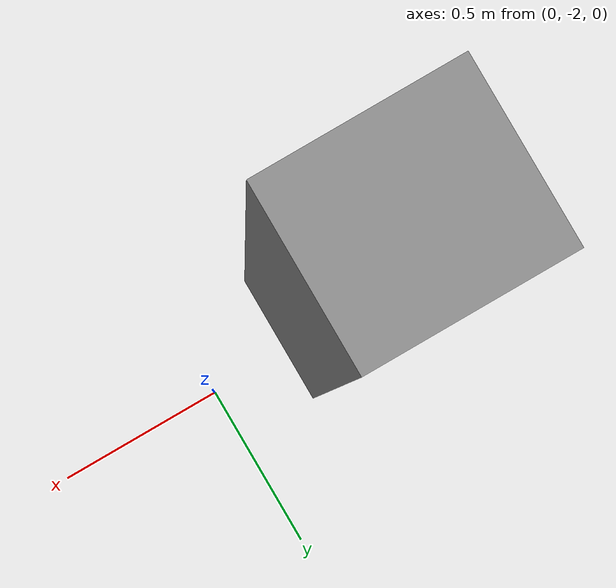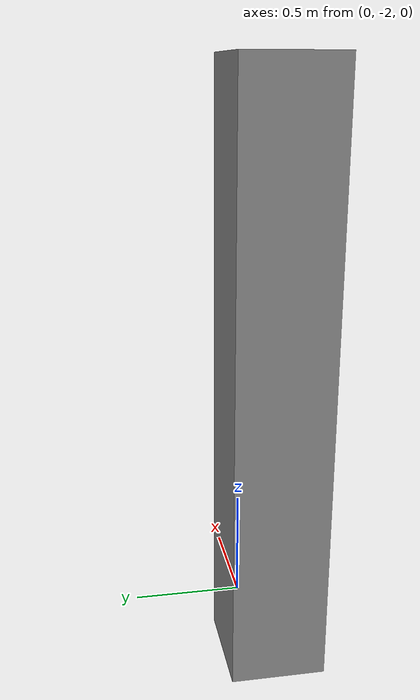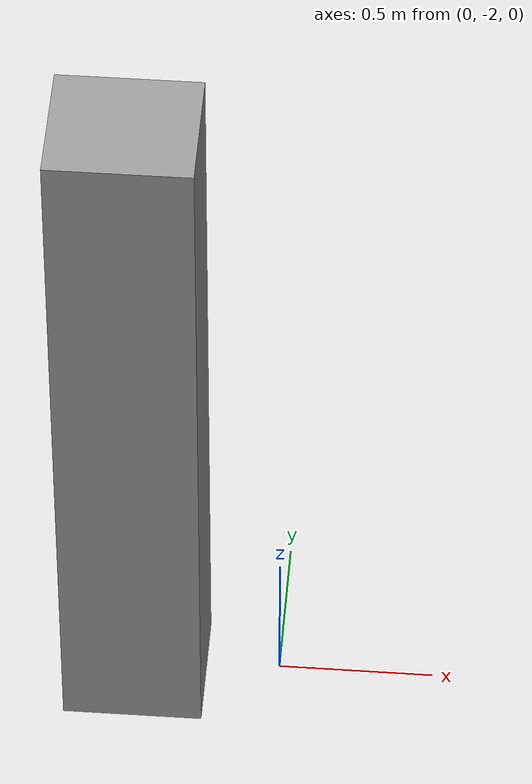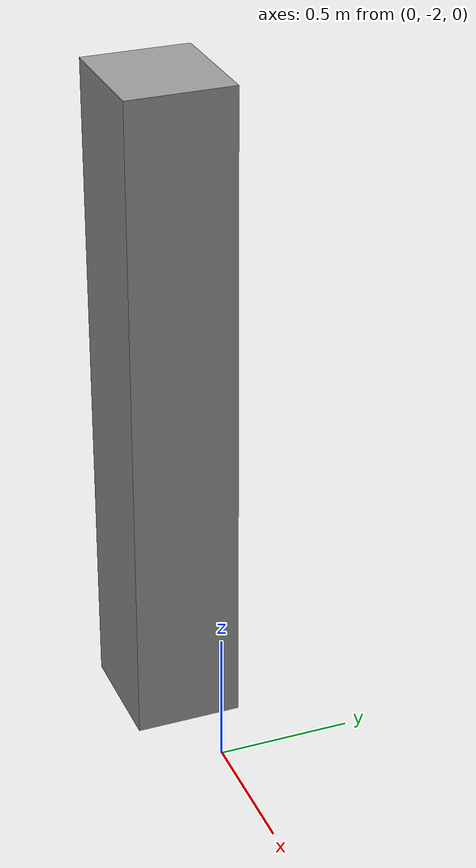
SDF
<?xml version='1.0'?>
<sdf version='1.6'>
  <model name='plojecter'>
    <pose frame=''>-0.465 -2.04 0 0 -0 0</pose>
    <link name='Wall_0'>
      <collision name='Wall_0_Collision'>
        <geometry>
          <box>
            <size>0.45 0.4 2.5</size>
          </box>
        </geometry>
        <pose frame=''>0 0 1.25 0 -0 0</pose>
      </collision>
      <visual name='Wall_0_Visual'>
        <pose frame=''>0 0 1.25 0 -0 0</pose>
        <geometry>
          <box>
            <size>0.45 0.4 2.5</size>
          </box>
        </geometry>
        <material>
          <script>
            <uri>file://media/materials/scripts/gazebo.material</uri>
            <name>Gazebo/Grey</name>
          </script>
          <ambient>1 1 1 1</ambient>
        </material>
      </visual>
      <pose frame=''>0 0 0 0 -0 0</pose>
    </link>
    <static>1</static>
  </model>
</sdf>
